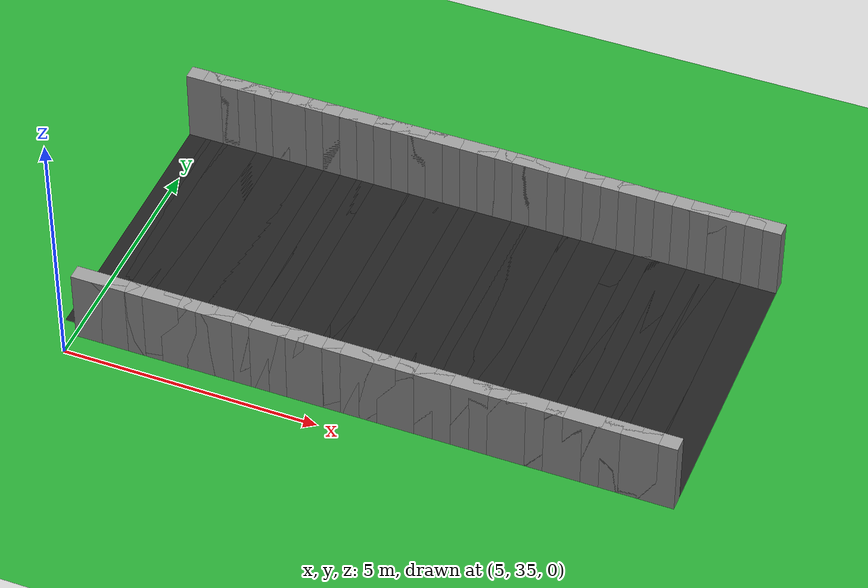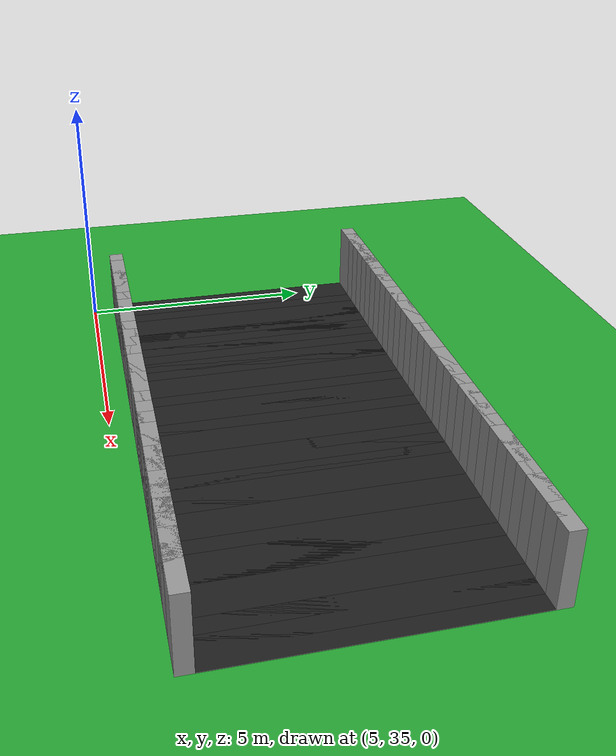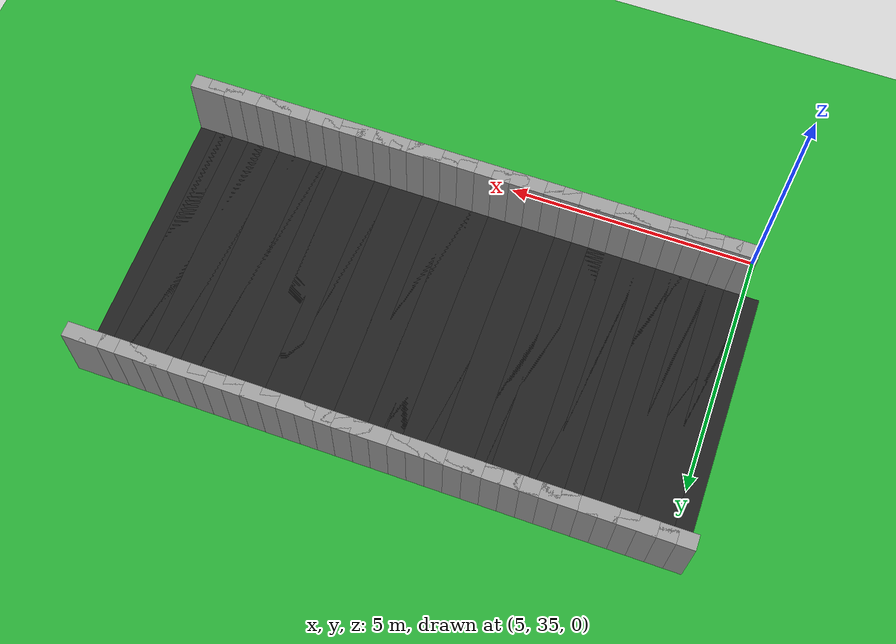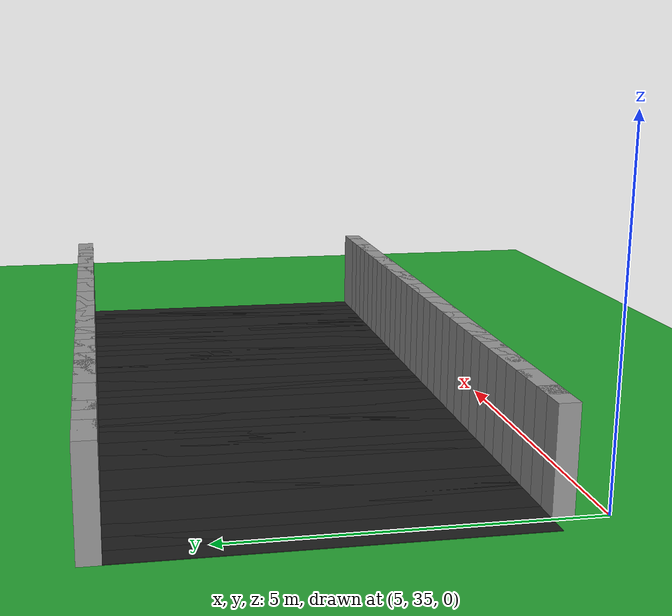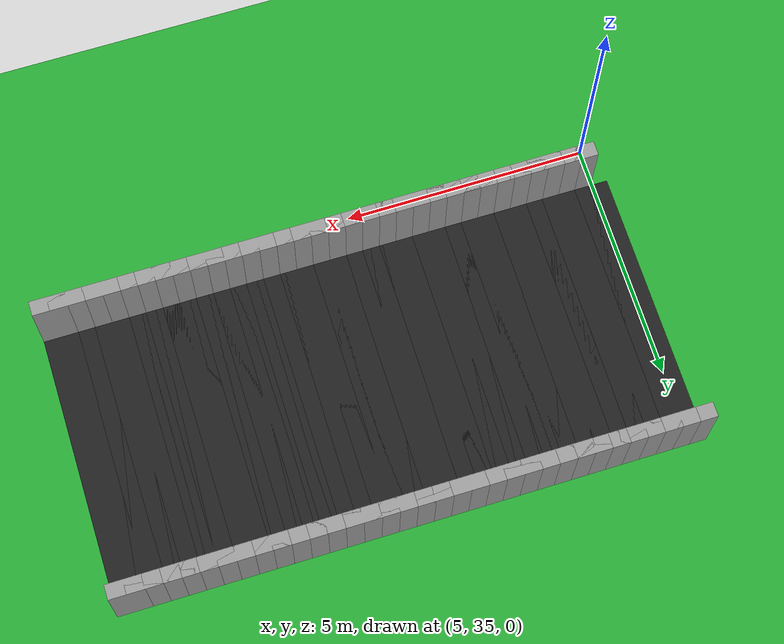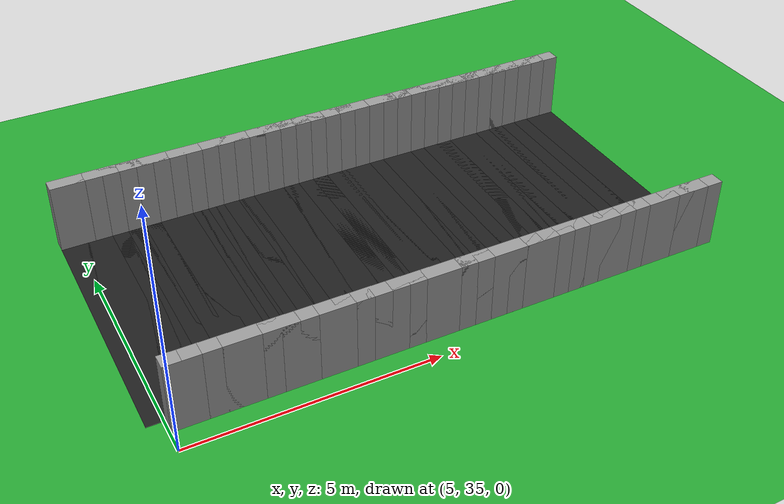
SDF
<sdf version="1.6">
 <world name="loop_speedloop">
  <include><uri>model://sun</uri></include>
  <model name="ground_plane">
   <static>true</static>
   <link name="link">
    <collision name="collision">
     <surface><friction><ode><mu>100</mu><mu2>50</mu2></ode></friction></surface>
     <geometry><plane><normal>0 0 1</normal><size>120 120</size></plane></geometry>
    </collision>
    <visual name="visual">
     <geometry><plane><normal>0 0 1</normal><size>120 120</size></plane></geometry>
     <material>
      <script><uri>file://media/materials/scripts/gazebo.material</uri><name>Gazebo/Green</name></script>
     </material>
    </visual>
   </link>
  </model>
  <model name="asphalt_306">
   <static>true</static>
   <pose>16.226 38.502 0.005 0 0 3.14159</pose>
   <link name="link">
    <visual name="visual">
     <geometry><box><size>0.710 5.500 0.010</size></box></geometry>
     <material>
      <script><uri>file://media/materials/scripts/gazebo.material</uri><name>Gazebo/Black</name></script>
     </material>
    </visual>
   </link>
  </model>
  <model name="curbL_306">
   <static>true</static>
   <pose>16.226 35.602 0.750 0 0 3.14159</pose>
   <link name="link">
    <collision name="collision"><geometry><box><size>0.710 0.300 1.500</size></box></geometry></collision>
    <visual name="visual">
     <geometry><box><size>0.710 0.300 1.500</size></box></geometry>
     <material>
      <script><uri>file://media/materials/scripts/gazebo.material</uri><name>Gazebo/Grey</name></script>
     </material>
    </visual>
   </link>
  </model>
  <model name="curbR_306">
   <static>true</static>
   <pose>16.226 41.402 0.750 0 0 3.14159</pose>
   <link name="link">
    <collision name="collision"><geometry><box><size>0.710 0.300 1.500</size></box></geometry></collision>
    <visual name="visual">
     <geometry><box><size>0.710 0.300 1.500</size></box></geometry>
     <material>
      <script><uri>file://media/materials/scripts/gazebo.material</uri><name>Gazebo/Grey</name></script>
     </material>
    </visual>
   </link>
  </model>
  <model name="asphalt_307">
   <static>true</static>
   <pose>15.876 38.502 0.005 0 0 3.14159</pose>
   <link name="link">
    <visual name="visual">
     <geometry><box><size>0.710 5.500 0.010</size></box></geometry>
     <material>
      <script><uri>file://media/materials/scripts/gazebo.material</uri><name>Gazebo/Black</name></script>
     </material>
    </visual>
   </link>
  </model>
  <model name="curbL_307">
   <static>true</static>
   <pose>15.876 35.602 0.750 0 0 3.14159</pose>
   <link name="link">
    <collision name="collision"><geometry><box><size>0.710 0.300 1.500</size></box></geometry></collision>
    <visual name="visual">
     <geometry><box><size>0.710 0.300 1.500</size></box></geometry>
     <material>
      <script><uri>file://media/materials/scripts/gazebo.material</uri><name>Gazebo/Grey</name></script>
     </material>
    </visual>
   </link>
  </model>
  <model name="curbR_307">
   <static>true</static>
   <pose>15.876 41.402 0.750 0 0 3.14159</pose>
   <link name="link">
    <collision name="collision"><geometry><box><size>0.710 0.300 1.500</size></box></geometry></collision>
    <visual name="visual">
     <geometry><box><size>0.710 0.300 1.500</size></box></geometry>
     <material>
      <script><uri>file://media/materials/scripts/gazebo.material</uri><name>Gazebo/Grey</name></script>
     </material>
    </visual>
   </link>
  </model>
  <model name="asphalt_308">
   <static>true</static>
   <pose>15.526 38.502 0.005 0 0 3.14159</pose>
   <link name="link">
    <visual name="visual">
     <geometry><box><size>0.710 5.500 0.010</size></box></geometry>
     <material>
      <script><uri>file://media/materials/scripts/gazebo.material</uri><name>Gazebo/Black</name></script>
     </material>
    </visual>
   </link>
  </model>
  <model name="curbL_308">
   <static>true</static>
   <pose>15.526 35.602 0.750 0 0 3.14159</pose>
   <link name="link">
    <collision name="collision"><geometry><box><size>0.710 0.300 1.500</size></box></geometry></collision>
    <visual name="visual">
     <geometry><box><size>0.710 0.300 1.500</size></box></geometry>
     <material>
      <script><uri>file://media/materials/scripts/gazebo.material</uri><name>Gazebo/Grey</name></script>
     </material>
    </visual>
   </link>
  </model>
  <model name="curbR_308">
   <static>true</static>
   <pose>15.526 41.402 0.750 0 0 3.14159</pose>
   <link name="link">
    <collision name="collision"><geometry><box><size>0.710 0.300 1.500</size></box></geometry></collision>
    <visual name="visual">
     <geometry><box><size>0.710 0.300 1.500</size></box></geometry>
     <material>
      <script><uri>file://media/materials/scripts/gazebo.material</uri><name>Gazebo/Grey</name></script>
     </material>
    </visual>
   </link>
  </model>
  <model name="asphalt_309">
   <static>true</static>
   <pose>15.176 38.502 0.005 0 0 3.14159</pose>
   <link name="link">
    <visual name="visual">
     <geometry><box><size>0.710 5.500 0.010</size></box></geometry>
     <material>
      <script><uri>file://media/materials/scripts/gazebo.material</uri><name>Gazebo/Black</name></script>
     </material>
    </visual>
   </link>
  </model>
  <model name="curbL_309">
   <static>true</static>
   <pose>15.176 35.602 0.750 0 0 3.14159</pose>
   <link name="link">
    <collision name="collision"><geometry><box><size>0.710 0.300 1.500</size></box></geometry></collision>
    <visual name="visual">
     <geometry><box><size>0.710 0.300 1.500</size></box></geometry>
     <material>
      <script><uri>file://media/materials/scripts/gazebo.material</uri><name>Gazebo/Grey</name></script>
     </material>
    </visual>
   </link>
  </model>
  <model name="curbR_309">
   <static>true</static>
   <pose>15.176 41.402 0.750 0 0 3.14159</pose>
   <link name="link">
    <collision name="collision"><geometry><box><size>0.710 0.300 1.500</size></box></geometry></collision>
    <visual name="visual">
     <geometry><box><size>0.710 0.300 1.500</size></box></geometry>
     <material>
      <script><uri>file://media/materials/scripts/gazebo.material</uri><name>Gazebo/Grey</name></script>
     </material>
    </visual>
   </link>
  </model>
  <model name="asphalt_310">
   <static>true</static>
   <pose>14.826 38.502 0.005 0 0 3.14159</pose>
   <link name="link">
    <visual name="visual">
     <geometry><box><size>0.710 5.500 0.010</size></box></geometry>
     <material>
      <script><uri>file://media/materials/scripts/gazebo.material</uri><name>Gazebo/Black</name></script>
     </material>
    </visual>
   </link>
  </model>
  <model name="curbL_310">
   <static>true</static>
   <pose>14.826 35.602 0.750 0 0 3.14159</pose>
   <link name="link">
    <collision name="collision"><geometry><box><size>0.710 0.300 1.500</size></box></geometry></collision>
    <visual name="visual">
     <geometry><box><size>0.710 0.300 1.500</size></box></geometry>
     <material>
      <script><uri>file://media/materials/scripts/gazebo.material</uri><name>Gazebo/Grey</name></script>
     </material>
    </visual>
   </link>
  </model>
  <model name="curbR_310">
   <static>true</static>
   <pose>14.826 41.402 0.750 0 0 3.14159</pose>
   <link name="link">
    <collision name="collision"><geometry><box><size>0.710 0.300 1.500</size></box></geometry></collision>
    <visual name="visual">
     <geometry><box><size>0.710 0.300 1.500</size></box></geometry>
     <material>
      <script><uri>file://media/materials/scripts/gazebo.material</uri><name>Gazebo/Grey</name></script>
     </material>
    </visual>
   </link>
  </model>
  <model name="asphalt_311">
   <static>true</static>
   <pose>14.476 38.502 0.005 0 0 3.14159</pose>
   <link name="link">
    <visual name="visual">
     <geometry><box><size>0.710 5.500 0.010</size></box></geometry>
     <material>
      <script><uri>file://media/materials/scripts/gazebo.material</uri><name>Gazebo/Black</name></script>
     </material>
    </visual>
   </link>
  </model>
  <model name="curbL_311">
   <static>true</static>
   <pose>14.476 35.602 0.750 0 0 3.14159</pose>
   <link name="link">
    <collision name="collision"><geometry><box><size>0.710 0.300 1.500</size></box></geometry></collision>
    <visual name="visual">
     <geometry><box><size>0.710 0.300 1.500</size></box></geometry>
     <material>
      <script><uri>file://media/materials/scripts/gazebo.material</uri><name>Gazebo/Grey</name></script>
     </material>
    </visual>
   </link>
  </model>
  <model name="curbR_311">
   <static>true</static>
   <pose>14.476 41.402 0.750 0 0 3.14159</pose>
   <link name="link">
    <collision name="collision"><geometry><box><size>0.710 0.300 1.500</size></box></geometry></collision>
    <visual name="visual">
     <geometry><box><size>0.710 0.300 1.500</size></box></geometry>
     <material>
      <script><uri>file://media/materials/scripts/gazebo.material</uri><name>Gazebo/Grey</name></script>
     </material>
    </visual>
   </link>
  </model>
  <model name="asphalt_312">
   <static>true</static>
   <pose>14.126 38.502 0.005 0 0 3.14159</pose>
   <link name="link">
    <visual name="visual">
     <geometry><box><size>0.710 5.500 0.010</size></box></geometry>
     <material>
      <script><uri>file://media/materials/scripts/gazebo.material</uri><name>Gazebo/Black</name></script>
     </material>
    </visual>
   </link>
  </model>
  <model name="curbL_312">
   <static>true</static>
   <pose>14.126 35.602 0.750 0 0 3.14159</pose>
   <link name="link">
    <collision name="collision"><geometry><box><size>0.710 0.300 1.500</size></box></geometry></collision>
    <visual name="visual">
     <geometry><box><size>0.710 0.300 1.500</size></box></geometry>
     <material>
      <script><uri>file://media/materials/scripts/gazebo.material</uri><name>Gazebo/Grey</name></script>
     </material>
    </visual>
   </link>
  </model>
  <model name="curbR_312">
   <static>true</static>
   <pose>14.126 41.402 0.750 0 0 3.14159</pose>
   <link name="link">
    <collision name="collision"><geometry><box><size>0.710 0.300 1.500</size></box></geometry></collision>
    <visual name="visual">
     <geometry><box><size>0.710 0.300 1.500</size></box></geometry>
     <material>
      <script><uri>file://media/materials/scripts/gazebo.material</uri><name>Gazebo/Grey</name></script>
     </material>
    </visual>
   </link>
  </model>
  <model name="asphalt_313">
   <static>true</static>
   <pose>13.776 38.502 0.005 0 0 3.14159</pose>
   <link name="link">
    <visual name="visual">
     <geometry><box><size>0.710 5.500 0.010</size></box></geometry>
     <material>
      <script><uri>file://media/materials/scripts/gazebo.material</uri><name>Gazebo/Black</name></script>
     </material>
    </visual>
   </link>
  </model>
  <model name="curbL_313">
   <static>true</static>
   <pose>13.776 35.602 0.750 0 0 3.14159</pose>
   <link name="link">
    <collision name="collision"><geometry><box><size>0.710 0.300 1.500</size></box></geometry></collision>
    <visual name="visual">
     <geometry><box><size>0.710 0.300 1.500</size></box></geometry>
     <material>
      <script><uri>file://media/materials/scripts/gazebo.material</uri><name>Gazebo/Grey</name></script>
     </material>
    </visual>
   </link>
  </model>
  <model name="curbR_313">
   <static>true</static>
   <pose>13.776 41.402 0.750 0 0 3.14159</pose>
   <link name="link">
    <collision name="collision"><geometry><box><size>0.710 0.300 1.500</size></box></geometry></collision>
    <visual name="visual">
     <geometry><box><size>0.710 0.300 1.500</size></box></geometry>
     <material>
      <script><uri>file://media/materials/scripts/gazebo.material</uri><name>Gazebo/Grey</name></script>
     </material>
    </visual>
   </link>
  </model>
  <model name="asphalt_314">
   <static>true</static>
   <pose>13.426 38.502 0.005 0 0 3.14159</pose>
   <link name="link">
    <visual name="visual">
     <geometry><box><size>0.710 5.500 0.010</size></box></geometry>
     <material>
      <script><uri>file://media/materials/scripts/gazebo.material</uri><name>Gazebo/Black</name></script>
     </material>
    </visual>
   </link>
  </model>
  <model name="curbL_314">
   <static>true</static>
   <pose>13.426 35.602 0.750 0 0 3.14159</pose>
   <link name="link">
    <collision name="collision"><geometry><box><size>0.710 0.300 1.500</size></box></geometry></collision>
    <visual name="visual">
     <geometry><box><size>0.710 0.300 1.500</size></box></geometry>
     <material>
      <script><uri>file://media/materials/scripts/gazebo.material</uri><name>Gazebo/Grey</name></script>
     </material>
    </visual>
   </link>
  </model>
  <model name="curbR_314">
   <static>true</static>
   <pose>13.426 41.402 0.750 0 0 3.14159</pose>
   <link name="link">
    <collision name="collision"><geometry><box><size>0.710 0.300 1.500</size></box></geometry></collision>
    <visual name="visual">
     <geometry><box><size>0.710 0.300 1.500</size></box></geometry>
     <material>
      <script><uri>file://media/materials/scripts/gazebo.material</uri><name>Gazebo/Grey</name></script>
     </material>
    </visual>
   </link>
  </model>
  <model name="asphalt_315">
   <static>true</static>
   <pose>13.076 38.502 0.005 0 0 3.14159</pose>
   <link name="link">
    <visual name="visual">
     <geometry><box><size>0.710 5.500 0.010</size></box></geometry>
     <material>
      <script><uri>file://media/materials/scripts/gazebo.material</uri><name>Gazebo/Black</name></script>
     </material>
    </visual>
   </link>
  </model>
  <model name="curbL_315">
   <static>true</static>
   <pose>13.076 35.602 0.750 0 0 3.14159</pose>
   <link name="link">
    <collision name="collision"><geometry><box><size>0.710 0.300 1.500</size></box></geometry></collision>
    <visual name="visual">
     <geometry><box><size>0.710 0.300 1.500</size></box></geometry>
     <material>
      <script><uri>file://media/materials/scripts/gazebo.material</uri><name>Gazebo/Grey</name></script>
     </material>
    </visual>
   </link>
  </model>
  <model name="curbR_315">
   <static>true</static>
   <pose>13.076 41.402 0.750 0 0 3.14159</pose>
   <link name="link">
    <collision name="collision"><geometry><box><size>0.710 0.300 1.500</size></box></geometry></collision>
    <visual name="visual">
     <geometry><box><size>0.710 0.300 1.500</size></box></geometry>
     <material>
      <script><uri>file://media/materials/scripts/gazebo.material</uri><name>Gazebo/Grey</name></script>
     </material>
    </visual>
   </link>
  </model>
  <model name="asphalt_316">
   <static>true</static>
   <pose>12.726 38.502 0.005 0 0 3.14159</pose>
   <link name="link">
    <visual name="visual">
     <geometry><box><size>0.710 5.500 0.010</size></box></geometry>
     <material>
      <script><uri>file://media/materials/scripts/gazebo.material</uri><name>Gazebo/Black</name></script>
     </material>
    </visual>
   </link>
  </model>
  <model name="curbL_316">
   <static>true</static>
   <pose>12.726 35.602 0.750 0 0 3.14159</pose>
   <link name="link">
    <collision name="collision"><geometry><box><size>0.710 0.300 1.500</size></box></geometry></collision>
    <visual name="visual">
     <geometry><box><size>0.710 0.300 1.500</size></box></geometry>
     <material>
      <script><uri>file://media/materials/scripts/gazebo.material</uri><name>Gazebo/Grey</name></script>
     </material>
    </visual>
   </link>
  </model>
  <model name="curbR_316">
   <static>true</static>
   <pose>12.726 41.402 0.750 0 0 3.14159</pose>
   <link name="link">
    <collision name="collision"><geometry><box><size>0.710 0.300 1.500</size></box></geometry></collision>
    <visual name="visual">
     <geometry><box><size>0.710 0.300 1.500</size></box></geometry>
     <material>
      <script><uri>file://media/materials/scripts/gazebo.material</uri><name>Gazebo/Grey</name></script>
     </material>
    </visual>
   </link>
  </model>
  <model name="asphalt_317">
   <static>true</static>
   <pose>12.376 38.502 0.005 0 0 3.14159</pose>
   <link name="link">
    <visual name="visual">
     <geometry><box><size>0.710 5.500 0.010</size></box></geometry>
     <material>
      <script><uri>file://media/materials/scripts/gazebo.material</uri><name>Gazebo/Black</name></script>
     </material>
    </visual>
   </link>
  </model>
  <model name="curbL_317">
   <static>true</static>
   <pose>12.376 35.602 0.750 0 0 3.14159</pose>
   <link name="link">
    <collision name="collision"><geometry><box><size>0.710 0.300 1.500</size></box></geometry></collision>
    <visual name="visual">
     <geometry><box><size>0.710 0.300 1.500</size></box></geometry>
     <material>
      <script><uri>file://media/materials/scripts/gazebo.material</uri><name>Gazebo/Grey</name></script>
     </material>
    </visual>
   </link>
  </model>
  <model name="curbR_317">
   <static>true</static>
   <pose>12.376 41.402 0.750 0 0 3.14159</pose>
   <link name="link">
    <collision name="collision"><geometry><box><size>0.710 0.300 1.500</size></box></geometry></collision>
    <visual name="visual">
     <geometry><box><size>0.710 0.300 1.500</size></box></geometry>
     <material>
      <script><uri>file://media/materials/scripts/gazebo.material</uri><name>Gazebo/Grey</name></script>
     </material>
    </visual>
   </link>
  </model>
  <model name="asphalt_318">
   <static>true</static>
   <pose>12.026 38.502 0.005 0 0 3.14159</pose>
   <link name="link">
    <visual name="visual">
     <geometry><box><size>0.710 5.500 0.010</size></box></geometry>
     <material>
      <script><uri>file://media/materials/scripts/gazebo.material</uri><name>Gazebo/Black</name></script>
     </material>
    </visual>
   </link>
  </model>
  <model name="curbL_318">
   <static>true</static>
   <pose>12.026 35.602 0.750 0 0 3.14159</pose>
   <link name="link">
    <collision name="collision"><geometry><box><size>0.710 0.300 1.500</size></box></geometry></collision>
    <visual name="visual">
     <geometry><box><size>0.710 0.300 1.500</size></box></geometry>
     <material>
      <script><uri>file://media/materials/scripts/gazebo.material</uri><name>Gazebo/Grey</name></script>
     </material>
    </visual>
   </link>
  </model>
  <model name="curbR_318">
   <static>true</static>
   <pose>12.026 41.402 0.750 0 0 3.14159</pose>
   <link name="link">
    <collision name="collision"><geometry><box><size>0.710 0.300 1.500</size></box></geometry></collision>
    <visual name="visual">
     <geometry><box><size>0.710 0.300 1.500</size></box></geometry>
     <material>
      <script><uri>file://media/materials/scripts/gazebo.material</uri><name>Gazebo/Grey</name></script>
     </material>
    </visual>
   </link>
  </model>
  <model name="asphalt_319">
   <static>true</static>
   <pose>11.676 38.502 0.005 0 0 3.14159</pose>
   <link name="link">
    <visual name="visual">
     <geometry><box><size>0.710 5.500 0.010</size></box></geometry>
     <material>
      <script><uri>file://media/materials/scripts/gazebo.material</uri><name>Gazebo/Black</name></script>
     </material>
    </visual>
   </link>
  </model>
  <model name="curbL_319">
   <static>true</static>
   <pose>11.676 35.602 0.750 0 0 3.14159</pose>
   <link name="link">
    <collision name="collision"><geometry><box><size>0.710 0.300 1.500</size></box></geometry></collision>
    <visual name="visual">
     <geometry><box><size>0.710 0.300 1.500</size></box></geometry>
     <material>
      <script><uri>file://media/materials/scripts/gazebo.material</uri><name>Gazebo/Grey</name></script>
     </material>
    </visual>
   </link>
  </model>
  <model name="curbR_319">
   <static>true</static>
   <pose>11.676 41.402 0.750 0 0 3.14159</pose>
   <link name="link">
    <collision name="collision"><geometry><box><size>0.710 0.300 1.500</size></box></geometry></collision>
    <visual name="visual">
     <geometry><box><size>0.710 0.300 1.500</size></box></geometry>
     <material>
      <script><uri>file://media/materials/scripts/gazebo.material</uri><name>Gazebo/Grey</name></script>
     </material>
    </visual>
   </link>
  </model>
  <model name="asphalt_320">
   <static>true</static>
   <pose>11.326 38.502 0.005 0 0 3.14159</pose>
   <link name="link">
    <visual name="visual">
     <geometry><box><size>0.710 5.500 0.010</size></box></geometry>
     <material>
      <script><uri>file://media/materials/scripts/gazebo.material</uri><name>Gazebo/Black</name></script>
     </material>
    </visual>
   </link>
  </model>
  <model name="curbL_320">
   <static>true</static>
   <pose>11.326 35.602 0.750 0 0 3.14159</pose>
   <link name="link">
    <collision name="collision"><geometry><box><size>0.710 0.300 1.500</size></box></geometry></collision>
    <visual name="visual">
     <geometry><box><size>0.710 0.300 1.500</size></box></geometry>
     <material>
      <script><uri>file://media/materials/scripts/gazebo.material</uri><name>Gazebo/Grey</name></script>
     </material>
    </visual>
   </link>
  </model>
  <model name="curbR_320">
   <static>true</static>
   <pose>11.326 41.402 0.750 0 0 3.14159</pose>
   <link name="link">
    <collision name="collision"><geometry><box><size>0.710 0.300 1.500</size></box></geometry></collision>
    <visual name="visual">
     <geometry><box><size>0.710 0.300 1.500</size></box></geometry>
     <material>
      <script><uri>file://media/materials/scripts/gazebo.material</uri><name>Gazebo/Grey</name></script>
     </material>
    </visual>
   </link>
  </model>
  <model name="asphalt_321">
   <static>true</static>
   <pose>10.976 38.502 0.005 0 0 3.14159</pose>
   <link name="link">
    <visual name="visual">
     <geometry><box><size>0.710 5.500 0.010</size></box></geometry>
     <material>
      <script><uri>file://media/materials/scripts/gazebo.material</uri><name>Gazebo/Black</name></script>
     </material>
    </visual>
   </link>
  </model>
  <model name="curbL_321">
   <static>true</static>
   <pose>10.976 35.602 0.750 0 0 3.14159</pose>
   <link name="link">
    <collision name="collision"><geometry><box><size>0.710 0.300 1.500</size></box></geometry></collision>
    <visual name="visual">
     <geometry><box><size>0.710 0.300 1.500</size></box></geometry>
     <material>
      <script><uri>file://media/materials/scripts/gazebo.material</uri><name>Gazebo/Grey</name></script>
     </material>
    </visual>
   </link>
  </model>
  <model name="curbR_321">
   <static>true</static>
   <pose>10.976 41.402 0.750 0 0 3.14159</pose>
   <link name="link">
    <collision name="collision"><geometry><box><size>0.710 0.300 1.500</size></box></geometry></collision>
    <visual name="visual">
     <geometry><box><size>0.710 0.300 1.500</size></box></geometry>
     <material>
      <script><uri>file://media/materials/scripts/gazebo.material</uri><name>Gazebo/Grey</name></script>
     </material>
    </visual>
   </link>
  </model>
  <model name="asphalt_322">
   <static>true</static>
   <pose>10.626 38.502 0.005 0 0 3.14159</pose>
   <link name="link">
    <visual name="visual">
     <geometry><box><size>0.710 5.500 0.010</size></box></geometry>
     <material>
      <script><uri>file://media/materials/scripts/gazebo.material</uri><name>Gazebo/Black</name></script>
     </material>
    </visual>
   </link>
  </model>
  <model name="curbL_322">
   <static>true</static>
   <pose>10.626 35.602 0.750 0 0 3.14159</pose>
   <link name="link">
    <collision name="collision"><geometry><box><size>0.710 0.300 1.500</size></box></geometry></collision>
    <visual name="visual">
     <geometry><box><size>0.710 0.300 1.500</size></box></geometry>
     <material>
      <script><uri>file://media/materials/scripts/gazebo.material</uri><name>Gazebo/Grey</name></script>
     </material>
    </visual>
   </link>
  </model>
  <model name="curbR_322">
   <static>true</static>
   <pose>10.626 41.402 0.750 0 0 3.14159</pose>
   <link name="link">
    <collision name="collision"><geometry><box><size>0.710 0.300 1.500</size></box></geometry></collision>
    <visual name="visual">
     <geometry><box><size>0.710 0.300 1.500</size></box></geometry>
     <material>
      <script><uri>file://media/materials/scripts/gazebo.material</uri><name>Gazebo/Grey</name></script>
     </material>
    </visual>
   </link>
  </model>
  <model name="asphalt_323">
   <static>true</static>
   <pose>10.276 38.502 0.005 0 0 3.14159</pose>
   <link name="link">
    <visual name="visual">
     <geometry><box><size>0.710 5.500 0.010</size></box></geometry>
     <material>
      <script><uri>file://media/materials/scripts/gazebo.material</uri><name>Gazebo/Black</name></script>
     </material>
    </visual>
   </link>
  </model>
  <model name="curbL_323">
   <static>true</static>
   <pose>10.276 35.602 0.750 0 0 3.14159</pose>
   <link name="link">
    <collision name="collision"><geometry><box><size>0.710 0.300 1.500</size></box></geometry></collision>
    <visual name="visual">
     <geometry><box><size>0.710 0.300 1.500</size></box></geometry>
     <material>
      <script><uri>file://media/materials/scripts/gazebo.material</uri><name>Gazebo/Grey</name></script>
     </material>
    </visual>
   </link>
  </model>
  <model name="curbR_323">
   <static>true</static>
   <pose>10.276 41.402 0.750 0 0 3.14159</pose>
   <link name="link">
    <collision name="collision"><geometry><box><size>0.710 0.300 1.500</size></box></geometry></collision>
    <visual name="visual">
     <geometry><box><size>0.710 0.300 1.500</size></box></geometry>
     <material>
      <script><uri>file://media/materials/scripts/gazebo.material</uri><name>Gazebo/Grey</name></script>
     </material>
    </visual>
   </link>
  </model>
  <model name="asphalt_324">
   <static>true</static>
   <pose>9.926 38.502 0.005 0 0 3.14159</pose>
   <link name="link">
    <visual name="visual">
     <geometry><box><size>0.710 5.500 0.010</size></box></geometry>
     <material>
      <script><uri>file://media/materials/scripts/gazebo.material</uri><name>Gazebo/Black</name></script>
     </material>
    </visual>
   </link>
  </model>
  <model name="curbL_324">
   <static>true</static>
   <pose>9.926 35.602 0.750 0 0 3.14159</pose>
   <link name="link">
    <collision name="collision"><geometry><box><size>0.710 0.300 1.500</size></box></geometry></collision>
    <visual name="visual">
     <geometry><box><size>0.710 0.300 1.500</size></box></geometry>
     <material>
      <script><uri>file://media/materials/scripts/gazebo.material</uri><name>Gazebo/Grey</name></script>
     </material>
    </visual>
   </link>
  </model>
  <model name="curbR_324">
   <static>true</static>
   <pose>9.926 41.402 0.750 0 0 3.14159</pose>
   <link name="link">
    <collision name="collision"><geometry><box><size>0.710 0.300 1.500</size></box></geometry></collision>
    <visual name="visual">
     <geometry><box><size>0.710 0.300 1.500</size></box></geometry>
     <material>
      <script><uri>file://media/materials/scripts/gazebo.material</uri><name>Gazebo/Grey</name></script>
     </material>
    </visual>
   </link>
  </model>
  <model name="asphalt_325">
   <static>true</static>
   <pose>9.576 38.502 0.005 0 0 3.14159</pose>
   <link name="link">
    <visual name="visual">
     <geometry><box><size>0.710 5.500 0.010</size></box></geometry>
     <material>
      <script><uri>file://media/materials/scripts/gazebo.material</uri><name>Gazebo/Black</name></script>
     </material>
    </visual>
   </link>
  </model>
  <model name="curbL_325">
   <static>true</static>
   <pose>9.576 35.602 0.750 0 0 3.14159</pose>
   <link name="link">
    <collision name="collision"><geometry><box><size>0.710 0.300 1.500</size></box></geometry></collision>
    <visual name="visual">
     <geometry><box><size>0.710 0.300 1.500</size></box></geometry>
     <material>
      <script><uri>file://media/materials/scripts/gazebo.material</uri><name>Gazebo/Grey</name></script>
     </material>
    </visual>
   </link>
  </model>
  <model name="curbR_325">
   <static>true</static>
   <pose>9.576 41.402 0.750 0 0 3.14159</pose>
   <link name="link">
    <collision name="collision"><geometry><box><size>0.710 0.300 1.500</size></box></geometry></collision>
    <visual name="visual">
     <geometry><box><size>0.710 0.300 1.500</size></box></geometry>
     <material>
      <script><uri>file://media/materials/scripts/gazebo.material</uri><name>Gazebo/Grey</name></script>
     </material>
    </visual>
   </link>
  </model>
  <model name="asphalt_326">
   <static>true</static>
   <pose>9.226 38.502 0.005 0 0 3.14159</pose>
   <link name="link">
    <visual name="visual">
     <geometry><box><size>0.710 5.500 0.010</size></box></geometry>
     <material>
      <script><uri>file://media/materials/scripts/gazebo.material</uri><name>Gazebo/Black</name></script>
     </material>
    </visual>
   </link>
  </model>
  <model name="curbL_326">
   <static>true</static>
   <pose>9.226 35.602 0.750 0 0 3.14159</pose>
   <link name="link">
    <collision name="collision"><geometry><box><size>0.710 0.300 1.500</size></box></geometry></collision>
    <visual name="visual">
     <geometry><box><size>0.710 0.300 1.500</size></box></geometry>
     <material>
      <script><uri>file://media/materials/scripts/gazebo.material</uri><name>Gazebo/Grey</name></script>
     </material>
    </visual>
   </link>
  </model>
  <model name="curbR_326">
   <static>true</static>
   <pose>9.226 41.402 0.750 0 0 3.14159</pose>
   <link name="link">
    <collision name="collision"><geometry><box><size>0.710 0.300 1.500</size></box></geometry></collision>
    <visual name="visual">
     <geometry><box><size>0.710 0.300 1.500</size></box></geometry>
     <material>
      <script><uri>file://media/materials/scripts/gazebo.material</uri><name>Gazebo/Grey</name></script>
     </material>
    </visual>
   </link>
  </model>
  <model name="asphalt_327">
   <static>true</static>
   <pose>8.876 38.502 0.005 0 0 3.14159</pose>
   <link name="link">
    <visual name="visual">
     <geometry><box><size>0.710 5.500 0.010</size></box></geometry>
     <material>
      <script><uri>file://media/materials/scripts/gazebo.material</uri><name>Gazebo/Black</name></script>
     </material>
    </visual>
   </link>
  </model>
  <model name="curbL_327">
   <static>true</static>
   <pose>8.876 35.602 0.750 0 0 3.14159</pose>
   <link name="link">
    <collision name="collision"><geometry><box><size>0.710 0.300 1.500</size></box></geometry></collision>
    <visual name="visual">
     <geometry><box><size>0.710 0.300 1.500</size></box></geometry>
     <material>
      <script><uri>file://media/materials/scripts/gazebo.material</uri><name>Gazebo/Grey</name></script>
     </material>
    </visual>
   </link>
  </model>
  <model name="curbR_327">
   <static>true</static>
   <pose>8.876 41.402 0.750 0 0 3.14159</pose>
   <link name="link">
    <collision name="collision"><geometry><box><size>0.710 0.300 1.500</size></box></geometry></collision>
    <visual name="visual">
     <geometry><box><size>0.710 0.300 1.500</size></box></geometry>
     <material>
      <script><uri>file://media/materials/scripts/gazebo.material</uri><name>Gazebo/Grey</name></script>
     </material>
    </visual>
   </link>
  </model>
  <model name="asphalt_328">
   <static>true</static>
   <pose>8.526 38.502 0.005 0 0 3.14159</pose>
   <link name="link">
    <visual name="visual">
     <geometry><box><size>0.710 5.500 0.010</size></box></geometry>
     <material>
      <script><uri>file://media/materials/scripts/gazebo.material</uri><name>Gazebo/Black</name></script>
     </material>
    </visual>
   </link>
  </model>
  <model name="curbL_328">
   <static>true</static>
   <pose>8.526 35.602 0.750 0 0 3.14159</pose>
   <link name="link">
    <collision name="collision"><geometry><box><size>0.710 0.300 1.500</size></box></geometry></collision>
    <visual name="visual">
     <geometry><box><size>0.710 0.300 1.500</size></box></geometry>
     <material>
      <script><uri>file://media/materials/scripts/gazebo.material</uri><name>Gazebo/Grey</name></script>
     </material>
    </visual>
   </link>
  </model>
  <model name="curbR_328">
   <static>true</static>
   <pose>8.526 41.402 0.750 0 0 3.14159</pose>
   <link name="link">
    <collision name="collision"><geometry><box><size>0.710 0.300 1.500</size></box></geometry></collision>
    <visual name="visual">
     <geometry><box><size>0.710 0.300 1.500</size></box></geometry>
     <material>
      <script><uri>file://media/materials/scripts/gazebo.material</uri><name>Gazebo/Grey</name></script>
     </material>
    </visual>
   </link>
  </model>
  <model name="asphalt_329">
   <static>true</static>
   <pose>8.176 38.502 0.005 0 0 3.14159</pose>
   <link name="link">
    <visual name="visual">
     <geometry><box><size>0.710 5.500 0.010</size></box></geometry>
     <material>
      <script><uri>file://media/materials/scripts/gazebo.material</uri><name>Gazebo/Black</name></script>
     </material>
    </visual>
   </link>
  </model>
  <model name="curbL_329">
   <static>true</static>
   <pose>8.176 35.602 0.750 0 0 3.14159</pose>
   <link name="link">
    <collision name="collision"><geometry><box><size>0.710 0.300 1.500</size></box></geometry></collision>
    <visual name="visual">
     <geometry><box><size>0.710 0.300 1.500</size></box></geometry>
     <material>
      <script><uri>file://media/materials/scripts/gazebo.material</uri><name>Gazebo/Grey</name></script>
     </material>
    </visual>
   </link>
  </model>
  <model name="curbR_329">
   <static>true</static>
   <pose>8.176 41.402 0.750 0 0 3.14159</pose>
   <link name="link">
    <collision name="collision"><geometry><box><size>0.710 0.300 1.500</size></box></geometry></collision>
    <visual name="visual">
     <geometry><box><size>0.710 0.300 1.500</size></box></geometry>
     <material>
      <script><uri>file://media/materials/scripts/gazebo.material</uri><name>Gazebo/Grey</name></script>
     </material>
    </visual>
   </link>
  </model>
  <model name="asphalt_330">
   <static>true</static>
   <pose>7.826 38.502 0.005 0 0 3.14159</pose>
   <link name="link">
    <visual name="visual">
     <geometry><box><size>0.710 5.500 0.010</size></box></geometry>
     <material>
      <script><uri>file://media/materials/scripts/gazebo.material</uri><name>Gazebo/Black</name></script>
     </material>
    </visual>
   </link>
  </model>
  <model name="curbL_330">
   <static>true</static>
   <pose>7.826 35.602 0.750 0 0 3.14159</pose>
   <link name="link">
    <collision name="collision"><geometry><box><size>0.710 0.300 1.500</size></box></geometry></collision>
    <visual name="visual">
     <geometry><box><size>0.710 0.300 1.500</size></box></geometry>
     <material>
      <script><uri>file://media/materials/scripts/gazebo.material</uri><name>Gazebo/Grey</name></script>
     </material>
    </visual>
   </link>
  </model>
  <model name="curbR_330">
   <static>true</static>
   <pose>7.826 41.402 0.750 0 0 3.14159</pose>
   <link name="link">
    <collision name="collision"><geometry><box><size>0.710 0.300 1.500</size></box></geometry></collision>
    <visual name="visual">
     <geometry><box><size>0.710 0.300 1.500</size></box></geometry>
     <material>
      <script><uri>file://media/materials/scripts/gazebo.material</uri><name>Gazebo/Grey</name></script>
     </material>
    </visual>
   </link>
  </model>
  <model name="asphalt_331">
   <static>true</static>
   <pose>7.476 38.502 0.005 0 0 3.14159</pose>
   <link name="link">
    <visual name="visual">
     <geometry><box><size>0.710 5.500 0.010</size></box></geometry>
     <material>
      <script><uri>file://media/materials/scripts/gazebo.material</uri><name>Gazebo/Black</name></script>
     </material>
    </visual>
   </link>
  </model>
  <model name="curbL_331">
   <static>true</static>
   <pose>7.476 35.602 0.750 0 0 3.14159</pose>
   <link name="link">
    <collision name="collision"><geometry><box><size>0.710 0.300 1.500</size></box></geometry></collision>
    <visual name="visual">
     <geometry><box><size>0.710 0.300 1.500</size></box></geometry>
     <material>
      <script><uri>file://media/materials/scripts/gazebo.material</uri><name>Gazebo/Grey</name></script>
     </material>
    </visual>
   </link>
  </model>
  <model name="curbR_331">
   <static>true</static>
   <pose>7.476 41.402 0.750 0 0 3.14159</pose>
   <link name="link">
    <collision name="collision"><geometry><box><size>0.710 0.300 1.500</size></box></geometry></collision>
    <visual name="visual">
     <geometry><box><size>0.710 0.300 1.500</size></box></geometry>
     <material>
      <script><uri>file://media/materials/scripts/gazebo.material</uri><name>Gazebo/Grey</name></script>
     </material>
    </visual>
   </link>
  </model>
  <model name="asphalt_332">
   <static>true</static>
   <pose>7.126 38.502 0.005 0 0 3.14159</pose>
   <link name="link">
    <visual name="visual">
     <geometry><box><size>0.710 5.500 0.010</size></box></geometry>
     <material>
      <script><uri>file://media/materials/scripts/gazebo.material</uri><name>Gazebo/Black</name></script>
     </material>
    </visual>
   </link>
  </model>
  <model name="curbL_332">
   <static>true</static>
   <pose>7.126 35.602 0.750 0 0 3.14159</pose>
   <link name="link">
    <collision name="collision"><geometry><box><size>0.710 0.300 1.500</size></box></geometry></collision>
    <visual name="visual">
     <geometry><box><size>0.710 0.300 1.500</size></box></geometry>
     <material>
      <script><uri>file://media/materials/scripts/gazebo.material</uri><name>Gazebo/Grey</name></script>
     </material>
    </visual>
   </link>
  </model>
  <model name="curbR_332">
   <static>true</static>
   <pose>7.126 41.402 0.750 0 0 3.14159</pose>
   <link name="link">
    <collision name="collision"><geometry><box><size>0.710 0.300 1.500</size></box></geometry></collision>
    <visual name="visual">
     <geometry><box><size>0.710 0.300 1.500</size></box></geometry>
     <material>
      <script><uri>file://media/materials/scripts/gazebo.material</uri><name>Gazebo/Grey</name></script>
     </material>
    </visual>
   </link>
  </model>
  <model name="asphalt_333">
   <static>true</static>
   <pose>6.776 38.502 0.005 0 0 3.14159</pose>
   <link name="link">
    <visual name="visual">
     <geometry><box><size>0.710 5.500 0.010</size></box></geometry>
     <material>
      <script><uri>file://media/materials/scripts/gazebo.material</uri><name>Gazebo/Black</name></script>
     </material>
    </visual>
   </link>
  </model>
  <model name="curbL_333">
   <static>true</static>
   <pose>6.776 35.602 0.750 0 0 3.14159</pose>
   <link name="link">
    <collision name="collision"><geometry><box><size>0.710 0.300 1.500</size></box></geometry></collision>
    <visual name="visual">
     <geometry><box><size>0.710 0.300 1.500</size></box></geometry>
     <material>
      <script><uri>file://media/materials/scripts/gazebo.material</uri><name>Gazebo/Grey</name></script>
     </material>
    </visual>
   </link>
  </model>
  <model name="curbR_333">
   <static>true</static>
   <pose>6.776 41.402 0.750 0 0 3.14159</pose>
   <link name="link">
    <collision name="collision"><geometry><box><size>0.710 0.300 1.500</size></box></geometry></collision>
    <visual name="visual">
     <geometry><box><size>0.710 0.300 1.500</size></box></geometry>
     <material>
      <script><uri>file://media/materials/scripts/gazebo.material</uri><name>Gazebo/Grey</name></script>
     </material>
    </visual>
   </link>
  </model>
  <model name="asphalt_334">
   <static>true</static>
   <pose>6.426 38.502 0.005 0 0 3.14159</pose>
   <link name="link">
    <visual name="visual">
     <geometry><box><size>0.710 5.500 0.010</size></box></geometry>
     <material>
      <script><uri>file://media/materials/scripts/gazebo.material</uri><name>Gazebo/Black</name></script>
     </material>
    </visual>
   </link>
  </model>
  <model name="curbL_334">
   <static>true</static>
   <pose>6.426 35.602 0.750 0 0 3.14159</pose>
   <link name="link">
    <collision name="collision"><geometry><box><size>0.710 0.300 1.500</size></box></geometry></collision>
    <visual name="visual">
     <geometry><box><size>0.710 0.300 1.500</size></box></geometry>
     <material>
      <script><uri>file://media/materials/scripts/gazebo.material</uri><name>Gazebo/Grey</name></script>
     </material>
    </visual>
   </link>
  </model>
  <model name="curbR_334">
   <static>true</static>
   <pose>6.426 41.402 0.750 0 0 3.14159</pose>
   <link name="link">
    <collision name="collision"><geometry><box><size>0.710 0.300 1.500</size></box></geometry></collision>
    <visual name="visual">
     <geometry><box><size>0.710 0.300 1.500</size></box></geometry>
     <material>
      <script><uri>file://media/materials/scripts/gazebo.material</uri><name>Gazebo/Grey</name></script>
     </material>
    </visual>
   </link>
  </model>
  <model name="asphalt_335">
   <static>true</static>
   <pose>6.076 38.502 0.005 0 0 3.14159</pose>
   <link name="link">
    <visual name="visual">
     <geometry><box><size>0.710 5.500 0.010</size></box></geometry>
     <material>
      <script><uri>file://media/materials/scripts/gazebo.material</uri><name>Gazebo/Black</name></script>
     </material>
    </visual>
   </link>
  </model>
  <model name="curbL_335">
   <static>true</static>
   <pose>6.076 35.602 0.750 0 0 3.14159</pose>
   <link name="link">
    <collision name="collision"><geometry><box><size>0.710 0.300 1.500</size></box></geometry></collision>
    <visual name="visual">
     <geometry><box><size>0.710 0.300 1.500</size></box></geometry>
     <material>
      <script><uri>file://media/materials/scripts/gazebo.material</uri><name>Gazebo/Grey</name></script>
     </material>
    </visual>
   </link>
  </model>
  <model name="curbR_335">
   <static>true</static>
   <pose>6.076 41.402 0.750 0 0 3.14159</pose>
   <link name="link">
    <collision name="collision"><geometry><box><size>0.710 0.300 1.500</size></box></geometry></collision>
    <visual name="visual">
     <geometry><box><size>0.710 0.300 1.500</size></box></geometry>
     <material>
      <script><uri>file://media/materials/scripts/gazebo.material</uri><name>Gazebo/Grey</name></script>
     </material>
    </visual>
   </link>
  </model>
  <model name="asphalt_336">
   <static>true</static>
   <pose>5.726 38.502 0.005 0 0 3.14159</pose>
   <link name="link">
    <visual name="visual">
     <geometry><box><size>0.710 5.500 0.010</size></box></geometry>
     <material>
      <script><uri>file://media/materials/scripts/gazebo.material</uri><name>Gazebo/Black</name></script>
     </material>
    </visual>
   </link>
  </model>
  <model name="curbL_336">
   <static>true</static>
   <pose>5.726 35.602 0.750 0 0 3.14159</pose>
   <link name="link">
    <collision name="collision"><geometry><box><size>0.710 0.300 1.500</size></box></geometry></collision>
    <visual name="visual">
     <geometry><box><size>0.710 0.300 1.500</size></box></geometry>
     <material>
      <script><uri>file://media/materials/scripts/gazebo.material</uri><name>Gazebo/Grey</name></script>
     </material>
    </visual>
   </link>
  </model>
  <model name="curbR_336">
   <static>true</static>
   <pose>5.726 41.402 0.750 0 0 3.14159</pose>
   <link name="link">
    <collision name="collision"><geometry><box><size>0.710 0.300 1.500</size></box></geometry></collision>
    <visual name="visual">
     <geometry><box><size>0.710 0.300 1.500</size></box></geometry>
     <material>
      <script><uri>file://media/materials/scripts/gazebo.material</uri><name>Gazebo/Grey</name></script>
     </material>
    </visual>
   </link>
  </model>
  <model name="asphalt_337">
   <static>true</static>
   <pose>5.376 38.502 0.005 0 0 3.14159</pose>
   <link name="link">
    <visual name="visual">
     <geometry><box><size>0.710 5.500 0.010</size></box></geometry>
     <material>
      <script><uri>file://media/materials/scripts/gazebo.material</uri><name>Gazebo/Black</name></script>
     </material>
    </visual>
   </link>
  </model>
  <model name="curbL_337">
   <static>true</static>
   <pose>5.376 35.602 0.750 0 0 3.14159</pose>
   <link name="link">
    <collision name="collision"><geometry><box><size>0.710 0.300 1.500</size></box></geometry></collision>
    <visual name="visual">
     <geometry><box><size>0.710 0.300 1.500</size></box></geometry>
     <material>
      <script><uri>file://media/materials/scripts/gazebo.material</uri><name>Gazebo/Grey</name></script>
     </material>
    </visual>
   </link>
  </model>
  <model name="curbR_337">
   <static>true</static>
   <pose>5.376 41.402 0.750 0 0 3.14159</pose>
   <link name="link">
    <collision name="collision"><geometry><box><size>0.710 0.300 1.500</size></box></geometry></collision>
    <visual name="visual">
     <geometry><box><size>0.710 0.300 1.500</size></box></geometry>
     <material>
      <script><uri>file://media/materials/scripts/gazebo.material</uri><name>Gazebo/Grey</name></script>
     </material>
    </visual>
   </link>
  </model>
  <model name="asphalt_338">
   <static>true</static>
   <pose>5.026 38.502 0.005 0 0 3.14159</pose>
   <link name="link">
    <visual name="visual">
     <geometry><box><size>0.710 5.500 0.010</size></box></geometry>
     <material>
      <script><uri>file://media/materials/scripts/gazebo.material</uri><name>Gazebo/Black</name></script>
     </material>
    </visual>
   </link>
  </model>
  <model name="curbR_338">
   <static>true</static>
   <pose>5.026 41.402 0.750 0 0 3.14159</pose>
   <link name="link">
    <collision name="collision"><geometry><box><size>0.710 0.300 1.500</size></box></geometry></collision>
    <visual name="visual">
     <geometry><box><size>0.710 0.300 1.500</size></box></geometry>
     <material>
      <script><uri>file://media/materials/scripts/gazebo.material</uri><name>Gazebo/Grey</name></script>
     </material>
    </visual>
   </link>
  </model>
 </world>
</sdf>
